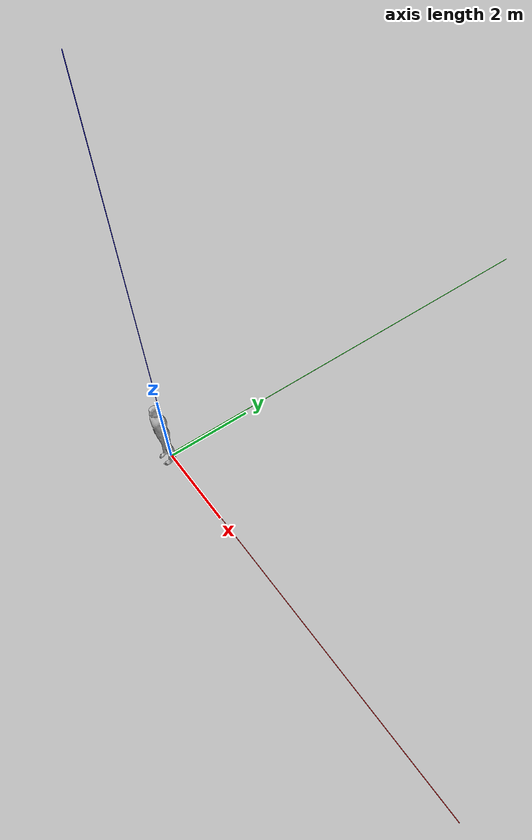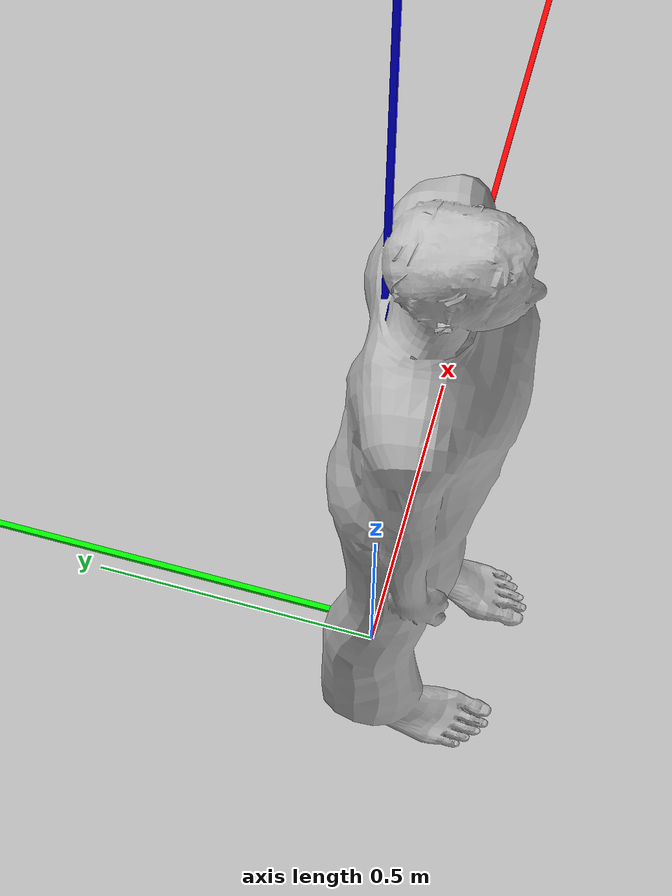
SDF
<sdf version="1.6">
 <world name="waves">
  <plugin filename="gz-sim-physics-system" name="gz::sim::systems::Physics"/>
  <plugin filename="gz-sim-sensors-system" name="gz::sim::systems::Sensors">
   <render_engine>ogre2</render_engine>
   <background_color>0.8 0.8 0.8</background_color>
  </plugin>
  <plugin filename="gz-sim-scene-broadcaster-system" name="gz::sim::systems::SceneBroadcaster"/>
  <plugin filename="gz-sim-user-commands-system" name="gz::sim::systems::UserCommands"/>
  <plugin filename="gz-sim-imu-system" name="gz::sim::systems::Imu"/>
  <plugin filename="gz-sim-magnetometer-system" name="gz::sim::systems::Magnetometer"/>
  <plugin filename="gz-sim-navsat-system" name="gz::sim::systems::NavSat"/>
  <scene><ambient>1.0 1.0 1.0</ambient><background>0.8 0.8 0.8</background></scene>
  <light type="directional" name="sun">
   <pose>0 0 10 0 0 0</pose>
   <diffuse>0.8 0.8 0.8 1</diffuse>
   <specular>0.6 0.6 0.6 1</specular>
   <direction>-0.5 0.1 -0.9</direction>
  </light>
  <include><uri>model://waves</uri></include>
  <model name="axes">
   <static>1</static>
   <link name="link">
    <visual name="r">
     <cast_shadows>0</cast_shadows>
     <pose>5 0 0.1 0 0 0</pose>
     <geometry><box><size>10 0.01 0.01</size></box></geometry>
     <material>
      <ambient>1 0 0 1</ambient>
      <diffuse>1 0 0 1</diffuse>
      <emissive>1 0 0 1</emissive>
      <specular>0.5 0.5 0.5 1</specular>
     </material>
    </visual>
    <visual name="g">
     <cast_shadows>0</cast_shadows>
     <pose>0 5 0.1 0 0 0</pose>
     <geometry><box><size>0.01 10 0.01</size></box></geometry>
     <material>
      <ambient>0 1 0 1</ambient>
      <diffuse>0 1 0 1</diffuse>
      <emissive>0 1 0 1</emissive>
      <specular>0.5 0.5 0.5 1</specular>
     </material>
    </visual>
    <visual name="b">
     <cast_shadows>0</cast_shadows>
     <pose>0 0 5.1 0 0 0</pose>
     <geometry><box><size>0.01 0.01 10</size></box></geometry>
     <material>
      <ambient>0 0 1 1</ambient>
      <diffuse>0 0 1 1</diffuse>
      <emissive>0 0 1 1</emissive>
      <specular>0.5 0.5 0.5 1</specular>
     </material>
    </visual>
   </link>
  </model>
  <include><uri>model://person_standing</uri></include>
 </world>
</sdf>

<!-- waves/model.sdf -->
<sdf version="1.6">
  <model name="waves">
    <static>true</static>
    <link name="link">
      <visual name= "wave_visual">
        <geometry>
          <mesh>
            <uri>meshes/mesh.dae</uri>
          </mesh>
        </geometry>
        <plugin
            filename="libWaveVisual.so"
            name="ignition::gazebo::systems::WaveVisual">
          <shader>
            <vertex>materials/programs/GerstnerWaves_vs_330.glsl</vertex>
            <fragment>materials/programs/GerstnerWaves_fs_330.glsl</fragment>
          </shader>
          <wavefield>
            <size>1000 1000</size>
            <cell_count>50 50</cell_count>
            <wave>
              <model>PMS</model>
              <period>5</period>
              <number>3</number>
              <scale>5.1</scale>
              <gain>0.3</gain>
              <direction>1 0</direction>
              <angle>0.4</angle>
              <tau>2.0</tau>
              <amplitude>0.0</amplitude>
              <steepness>0.0</steepness>
            </wave>
          </wavefield>
        </plugin>
        <visibility_flags>8</visibility_flags>
      </visual>
    </link>
  </model>
</sdf>

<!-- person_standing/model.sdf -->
<sdf version="1.5">
  <model name="person_standing">
    <link name="link">
      <inertial>
        <pose>0 -0.1 0.95 0 0 0</pose>
        <mass>80.0</mass>
        <inertia>
          <ixx>24.88</ixx>
          <ixy>0</ixy>
          <ixz>0</ixz>
          <iyy>25.73</iyy>
          <iyz>0</iyz>
          <izz>2.48</izz>
        </inertia>
      </inertial>

      <!-- TODO: Perhaps a box is too basic. Attempt to make a low poly person -->
      <collision name="person">
        <pose>0 -0.1 0.96 0 0 0</pose>
        <geometry>
          <box>
            <size>0.5 0.35 1.92</size>
          </box>
        </geometry>
      </collision>

      <visual name="visual">
        <pose>0 0 0.02 0.04 0 0</pose>
        <geometry>
          <mesh>
            <uri>model://person_standing/meshes/standing.dae</uri>
          </mesh>
        </geometry>
      </visual>
    </link>

    <!-- hydrodynamics plugin -->
    <plugin
        filename="gz-waves1-hydrodynamics-system"
        name="gz::sim::systems::Hydrodynamics">
    </plugin>

  </model>
</sdf>
